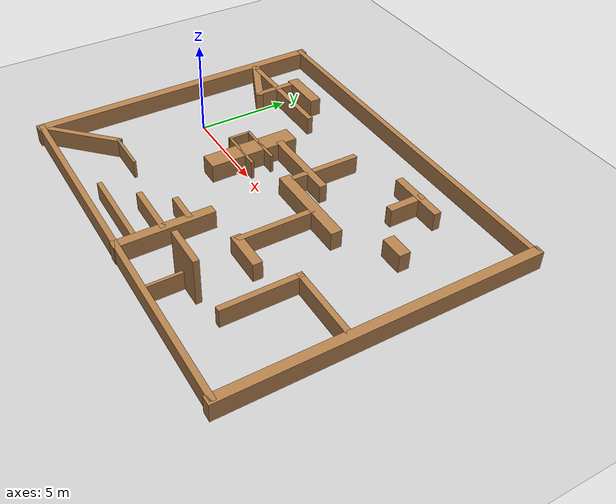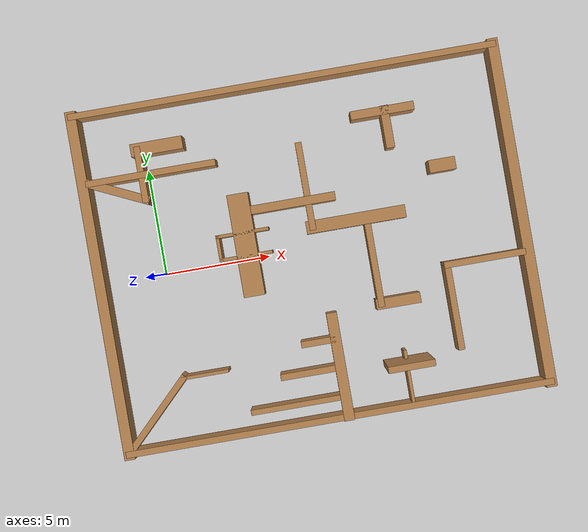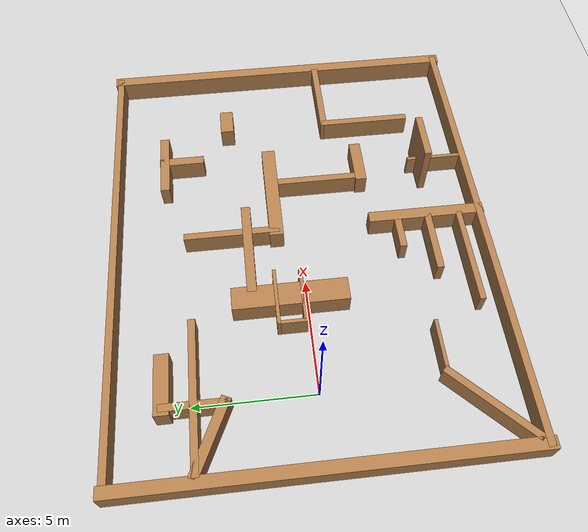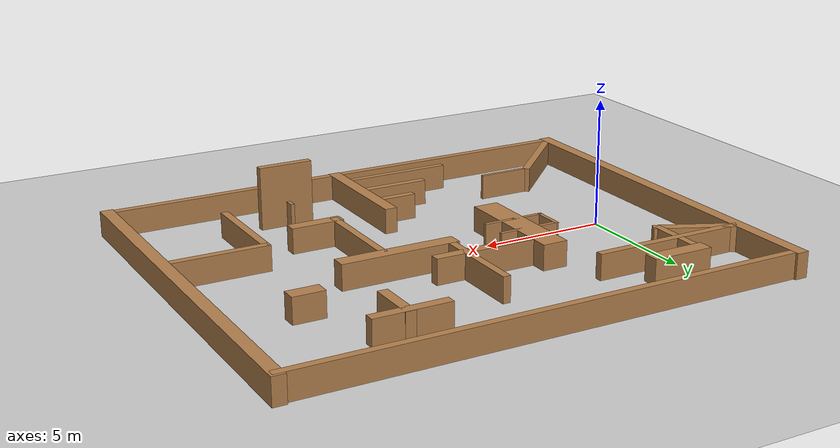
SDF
<sdf version="1.7">
 <world name="default">
  <light name="sun" type="directional">
   <pose>0 0 10 0 -0 0</pose>
   <diffuse>0.8 0.8 0.8 1</diffuse>
   <specular>0.2 0.2 0.2 1</specular>
   <attenuation>
    <range>1000</range>
    <constant>0.9</constant>
    <linear>0.01</linear>
    <quadratic>0.001</quadratic>
   </attenuation>
   <direction>-0.5 0.1 -0.9</direction>
   <spot><inner_angle>0</inner_angle><outer_angle>0</outer_angle><falloff>0</falloff></spot>
  </light>
  <model name="ground_plane">
   <static>1</static>
   <link name="link">
    <collision name="collision">
     <geometry><plane><normal>0 0 1</normal><size>100 100</size></plane></geometry>
     <surface><friction><ode><mu>100</mu><mu2>50</mu2></ode></friction></surface>
    </collision>
    <visual name="visual">
     <cast_shadows>0</cast_shadows>
     <geometry><plane><normal>0 0 1</normal><size>100 100</size></plane></geometry>
     <material>
      <script><uri>file://media/materials/scripts/gazebo.material</uri><name>Gazebo/Grey</name></script>
     </material>
    </visual>
   </link>
  </model>
  <gravity>0 0 -9.8</gravity>
  <magnetic_field>6e-06 2.3e-05 -4.2e-05</magnetic_field>
  <atmosphere type="adiabatic"/>
  <physics type="ode">
   <max_step_size>0.001</max_step_size>
   <real_time_factor>1</real_time_factor>
   <real_time_update_rate>1000</real_time_update_rate>
  </physics>
  <scene><ambient>0.4 0.4 0.4 1</ambient><background>0.7 0.7 0.7 1</background><shadows>1</shadows></scene>
  <spherical_coordinates>
   <surface_model>EARTH_WGS84</surface_model>
   <latitude_deg>0</latitude_deg>
   <longitude_deg>0</longitude_deg>
   <elevation>0</elevation>
   <heading_deg>0</heading_deg>
  </spherical_coordinates>
  <model name="test2">
   <pose>7 0 0 0 -0 0</pose>
   <link name="Wall_0">
    <collision name="Wall_0_Collision">
     <geometry><box><size>20.3 0.3 1</size></box></geometry>
     <pose>0 0 0.5 0 -0 0</pose>
    </collision>
    <visual name="Wall_0_Visual">
     <pose>0 0 0.5 0 -0 0</pose>
     <geometry><box><size>20.3 0.3 1</size></box></geometry>
     <material>
      <script><uri>file://media/materials/scripts/gazebo.material</uri><name>Gazebo/Wood</name></script>
      <ambient>1 1 1 1</ambient>
     </material>
     <meta><layer>0</layer></meta>
    </visual>
    <pose>-0 8 0 0 -0 0</pose>
   </link>
   <link name="Wall_10">
    <collision name="Wall_10_Collision">
     <geometry><box><size>6.14991 0.3 1</size></box></geometry>
     <pose>0 0 0.5 0 -0 0</pose>
    </collision>
    <visual name="Wall_10_Visual">
     <pose>0 0 0.5 0 -0 0</pose>
     <geometry><box><size>6.14991 0.3 1</size></box></geometry>
     <material>
      <script><uri>file://media/materials/scripts/gazebo.material</uri><name>Gazebo/Wood</name></script>
      <ambient>1 1 1 1</ambient>
     </material>
     <meta><layer>0</layer></meta>
    </visual>
    <pose>-6.769 4.775 0 0 -0 0</pose>
   </link>
   <link name="Wall_13">
    <collision name="Wall_13_Collision">
     <geometry><box><size>5.1001 0.5 1</size></box></geometry>
     <pose>0 0 0.5 0 -0 0</pose>
    </collision>
    <visual name="Wall_13_Visual">
     <pose>0 0 0.5 0 -0 0</pose>
     <geometry><box><size>5.1001 0.5 1</size></box></geometry>
     <material>
      <script><uri>file://media/materials/scripts/gazebo.material</uri><name>Gazebo/Wood</name></script>
      <ambient>1 1 1 1</ambient>
     </material>
     <meta><layer>0</layer></meta>
    </visual>
    <pose>0.426 -5.638 0 0 -0 1.5708</pose>
   </link>
   <link name="Wall_15">
    <collision name="Wall_15_Collision">
     <geometry><box><size>2.90014 0.3 1</size></box></geometry>
     <pose>0 0 0.5 0 -0 0</pose>
    </collision>
    <visual name="Wall_15_Visual">
     <pose>0 0 0.5 0 -0 0</pose>
     <geometry><box><size>2.90014 0.3 1</size></box></geometry>
     <material>
      <script><uri>file://media/materials/scripts/gazebo.material</uri><name>Gazebo/Wood</name></script>
      <ambient>1 1 1 1</ambient>
     </material>
     <meta><layer>0</layer></meta>
    </visual>
    <pose>-0.957 -5.671 0 0 -0 0</pose>
   </link>
   <link name="Wall_17">
    <collision name="Wall_17_Collision">
     <geometry><box><size>1.64993 0.3 1</size></box></geometry>
     <pose>0 0 0.5 0 -0 0</pose>
    </collision>
    <visual name="Wall_17_Visual">
     <pose>0 0 0.5 0 -0 0</pose>
     <geometry><box><size>1.64993 0.3 1</size></box></geometry>
     <material>
      <script><uri>file://media/materials/scripts/gazebo.material</uri><name>Gazebo/Wood</name></script>
      <ambient>1 1 1 1</ambient>
     </material>
     <meta><layer>0</layer></meta>
    </visual>
    <pose>-0.379001 -4.33 0 0 -0 0</pose>
   </link>
   <link name="Wall_19">
    <collision name="Wall_19_Collision">
     <geometry><box><size>4.59988 0.25 1</size></box></geometry>
     <pose>0 0 0.5 0 -0 0</pose>
    </collision>
    <visual name="Wall_19_Visual">
     <pose>0 0 0.5 0 -0 0</pose>
     <geometry><box><size>4.59988 0.25 1</size></box></geometry>
     <material>
      <script><uri>file://media/materials/scripts/gazebo.material</uri><name>Gazebo/Wood</name></script>
      <ambient>1 1 1 1</ambient>
     </material>
     <meta><layer>0</layer></meta>
    </visual>
    <pose>-1.752 -7.055 0 0 -0 0</pose>
   </link>
   <link name="Wall_2">
    <collision name="Wall_2_Collision">
     <geometry><box><size>20.3 0.3 1</size></box></geometry>
     <pose>0 0 0.5 0 -0 0</pose>
    </collision>
    <visual name="Wall_2_Visual">
     <pose>0 0 0.5 0 -0 0</pose>
     <geometry><box><size>20.3 0.3 1</size></box></geometry>
     <material>
      <script><uri>file://media/materials/scripts/gazebo.material</uri><name>Gazebo/Wood</name></script>
      <ambient>1 1 1 1</ambient>
     </material>
     <meta><layer>0</layer></meta>
    </visual>
    <pose>-0 -8 0 0 -0 0</pose>
   </link>
   <link name="Wall_22">
    <collision name="Wall_22_Collision">
     <geometry><box><size>2.5 0.15 1</size></box></geometry>
     <pose>0 0 0.5 0 -0 0</pose>
    </collision>
    <visual name="Wall_22_Visual">
     <pose>0 0 0.5 0 -0 0</pose>
     <geometry><box><size>2.5 0.15 1</size></box></geometry>
     <material>
      <script><uri>file://media/materials/scripts/gazebo.material</uri><name>Gazebo/Wood</name></script>
      <ambient>1 1 1 1</ambient>
     </material>
     <meta><layer>0</layer></meta>
    </visual>
    <pose>-3.032 1.305 0 0 -0 0</pose>
   </link>
   <link name="Wall_24">
    <collision name="Wall_24_Collision">
     <geometry><box><size>1.25 0.15 1</size></box></geometry>
     <pose>0 0 0.5 0 -0 0</pose>
    </collision>
    <visual name="Wall_24_Visual">
     <pose>0 0 0.5 0 -0 0</pose>
     <geometry><box><size>1.25 0.15 1</size></box></geometry>
     <material>
      <script><uri>file://media/materials/scripts/gazebo.material</uri><name>Gazebo/Wood</name></script>
      <ambient>1 1 1 1</ambient>
     </material>
     <meta><layer>0</layer></meta>
    </visual>
    <pose>-4.207 0.755 0 0 -0 -1.5708</pose>
   </link>
   <link name="Wall_26">
    <collision name="Wall_26_Collision">
     <geometry><box><size>2.5 0.15 1</size></box></geometry>
     <pose>0 0 0.5 0 -0 0</pose>
    </collision>
    <visual name="Wall_26_Visual">
     <pose>0 0 0.5 0 -0 0</pose>
     <geometry><box><size>2.5 0.15 1</size></box></geometry>
     <material>
      <script><uri>file://media/materials/scripts/gazebo.material</uri><name>Gazebo/Wood</name></script>
      <ambient>1 1 1 1</ambient>
     </material>
     <meta><layer>0</layer></meta>
    </visual>
    <pose>-3.032 0.205 0 0 -0 0</pose>
   </link>
   <link name="Wall_28">
    <collision name="Wall_28_Collision">
     <geometry><box><size>4.85019 1 1</size></box></geometry>
     <pose>0 0 0.5 0 -0 0</pose>
    </collision>
    <visual name="Wall_28_Visual">
     <pose>0 0 0.5 0 -0 0</pose>
     <geometry><box><size>4.85019 1 1</size></box></geometry>
     <material>
      <script><uri>file://media/materials/scripts/gazebo.material</uri><name>Gazebo/Wood</name></script>
      <ambient>1 1 1 1</ambient>
     </material>
     <meta><layer>0</layer></meta>
    </visual>
    <pose>-2.959 0.719 0 0 -0 -1.5708</pose>
   </link>
   <link name="Wall_31">
    <collision name="Wall_31_Collision">
     <geometry><box><size>3 0.4 1</size></box></geometry>
     <pose>0 0 0.5 0 -0 0</pose>
    </collision>
    <visual name="Wall_31_Visual">
     <pose>0 0 0.5 0 -0 0</pose>
     <geometry><box><size>3 0.4 1</size></box></geometry>
     <material>
      <script><uri>file://media/materials/scripts/gazebo.material</uri><name>Gazebo/Wood</name></script>
      <ambient>1 1 1 1</ambient>
     </material>
     <meta><layer>0</layer></meta>
    </visual>
    <pose>4.38319 5.80907 0 0 -0 0</pose>
   </link>
   <link name="Wall_35">
    <collision name="Wall_35_Collision">
     <geometry><box><size>1.25 0.6 1</size></box></geometry>
     <pose>0 0 0.5 0 -0 0</pose>
    </collision>
    <visual name="Wall_35_Visual">
     <pose>0 0 0.5 0 -0 0</pose>
     <geometry><box><size>1.25 0.6 1</size></box></geometry>
     <material>
      <script><uri>file://media/materials/scripts/gazebo.material</uri><name>Gazebo/Wood</name></script>
      <ambient>1 1 1 1</ambient>
     </material>
     <meta><layer>0</layer></meta>
    </visual>
    <pose>6.716 2.842 0 0 -0 0</pose>
   </link>
   <link name="Wall_38">
    <collision name="Wall_38_Collision">
     <geometry><box><size>2.65 0.3 1</size></box></geometry>
     <pose>0 0 0.5 0 -0 0</pose>
    </collision>
    <visual name="Wall_38_Visual">
     <pose>0 0 0.5 0 -0 0</pose>
     <geometry><box><size>2.65 0.3 1</size></box></geometry>
     <material>
      <script><uri>file://media/materials/scripts/gazebo.material</uri><name>Gazebo/Wood</name></script>
      <ambient>1 1 1 1</ambient>
     </material>
     <meta><layer>0</layer></meta>
    </visual>
    <pose>-7.206 4.789 0 0 -0 -1.5708</pose>
   </link>
   <link name="Wall_4">
    <collision name="Wall_4_Collision">
     <geometry><box><size>16.5 0.5 1</size></box></geometry>
     <pose>0 0 0.5 0 -0 0</pose>
    </collision>
    <visual name="Wall_4_Visual">
     <pose>0 0 0.5 0 -0 0</pose>
     <geometry><box><size>16.5 0.5 1</size></box></geometry>
     <material>
      <script><uri>file://media/materials/scripts/gazebo.material</uri><name>Gazebo/Wood</name></script>
      <ambient>1 1 1 1</ambient>
     </material>
     <meta><layer>0</layer></meta>
    </visual>
    <pose>-10 0 0 0 -0 -1.5708</pose>
   </link>
   <link name="Wall_40">
    <collision name="Wall_40_Collision">
     <geometry><box><size>3.14555 0.4 1</size></box></geometry>
     <pose>0 0 0.5 0 -0 0</pose>
    </collision>
    <visual name="Wall_40_Visual">
     <pose>0 0 0.5 0 -0 0</pose>
     <geometry><box><size>3.14555 0.4 1</size></box></geometry>
     <material>
      <script><uri>file://media/materials/scripts/gazebo.material</uri><name>Gazebo/Wood</name></script>
      <ambient>1 1 1 1</ambient>
     </material>
     <meta><layer>0</layer></meta>
    </visual>
    <pose>-8.45 4.1945 0 0 -0 -0.436605</pose>
   </link>
   <link name="Wall_42">
    <collision name="Wall_42_Collision">
     <geometry><box><size>4.25046 0.4 1</size></box></geometry>
     <pose>0 0 0.5 0 -0 0</pose>
    </collision>
    <visual name="Wall_42_Visual">
     <pose>0 0 0.5 0 -0 0</pose>
     <geometry><box><size>4.25046 0.4 1</size></box></geometry>
     <material>
      <script><uri>file://media/materials/scripts/gazebo.material</uri><name>Gazebo/Wood</name></script>
      <ambient>1 1 1 1</ambient>
     </material>
     <meta><layer>0</layer></meta>
    </visual>
    <pose>-0.581 2.276 0 0 -0 0</pose>
   </link>
   <link name="Wall_44">
    <collision name="Wall_44_Collision">
     <geometry><box><size>4.14966 0.3 1</size></box></geometry>
     <pose>0 0 0.5 0 -0 0</pose>
    </collision>
    <visual name="Wall_44_Visual">
     <pose>0 0 0.5 0 -0 0</pose>
     <geometry><box><size>4.14966 0.3 1</size></box></geometry>
     <material>
      <script><uri>file://media/materials/scripts/gazebo.material</uri><name>Gazebo/Wood</name></script>
      <ambient>1 1 1 1</ambient>
     </material>
     <meta><layer>0</layer></meta>
    </visual>
    <pose>0.257999 2.939 0 0 -0 -1.5708</pose>
   </link>
   <link name="Wall_46">
    <collision name="Wall_46_Collision">
     <geometry><box><size>4.7 0.6 1</size></box></geometry>
     <pose>0 0 0.5 0 -0 0</pose>
    </collision>
    <visual name="Wall_46_Visual">
     <pose>0 0 0.5 0 -0 0</pose>
     <geometry><box><size>4.7 0.6 1</size></box></geometry>
     <material>
      <script><uri>file://media/materials/scripts/gazebo.material</uri><name>Gazebo/Wood</name></script>
      <ambient>1 1 1 1</ambient>
     </material>
     <meta><layer>0</layer></meta>
    </visual>
    <pose>2.308 1.014 0 0 -0 0</pose>
   </link>
   <link name="Wall_48">
    <collision name="Wall_48_Collision">
     <geometry><box><size>4.15034 0.3 1</size></box></geometry>
     <pose>0 0 0.5 0 -0 0</pose>
    </collision>
    <visual name="Wall_48_Visual">
     <pose>0 0 0.5 0 -0 0</pose>
     <geometry><box><size>4.15034 0.3 1</size></box></geometry>
     <material>
      <script><uri>file://media/materials/scripts/gazebo.material</uri><name>Gazebo/Wood</name></script>
      <ambient>1 1 1 1</ambient>
     </material>
     <meta><layer>0</layer></meta>
    </visual>
    <pose>2.811 -1.153 0 0 -0 -1.5708</pose>
   </link>
   <link name="Wall_50">
    <collision name="Wall_50_Collision">
     <geometry><box><size>3.86502 0.3 1</size></box></geometry>
     <pose>0 0 0.5 0 -0 0</pose>
    </collision>
    <visual name="Wall_50_Visual">
     <pose>0 0 0.5 0 -0 0</pose>
     <geometry><box><size>3.86502 0.3 1</size></box></geometry>
     <material>
      <script><uri>file://media/materials/scripts/gazebo.material</uri><name>Gazebo/Wood</name></script>
      <ambient>1 1 1 1</ambient>
     </material>
     <meta><layer>0</layer></meta>
    </visual>
    <pose>7.93249 -1.80896 0 0 -0 0.000539</pose>
   </link>
   <link name="Wall_52">
    <collision name="Wall_52_Collision">
     <geometry><box><size>4.65012 0.3 1</size></box></geometry>
     <pose>0 0 0.5 0 -0 0</pose>
    </collision>
    <visual name="Wall_52_Visual">
     <pose>0 0 0.5 0 -0 0</pose>
     <geometry><box><size>4.65012 0.3 1</size></box></geometry>
     <material>
      <script><uri>file://media/materials/scripts/gazebo.material</uri><name>Gazebo/Wood</name></script>
      <ambient>1 1 1 1</ambient>
     </material>
     <meta><layer>0</layer></meta>
    </visual>
    <pose>-8.462 -6.462 0 0 -0 0.785398</pose>
   </link>
   <link name="Wall_54">
    <collision name="Wall_54_Collision">
     <geometry><box><size>2.25 0.15 1</size></box></geometry>
     <pose>0 0 0.5 0 -0 0</pose>
    </collision>
    <visual name="Wall_54_Visual">
     <pose>0 0 0.5 0 -0 0</pose>
     <geometry><box><size>2.25 0.15 1</size></box></geometry>
     <material>
      <script><uri>file://media/materials/scripts/gazebo.material</uri><name>Gazebo/Wood</name></script>
      <ambient>1 1 1 1</ambient>
     </material>
     <meta><layer>0</layer></meta>
    </visual>
    <pose>-5.874 -4.924 0 0 -0 0</pose>
   </link>
   <link name="Wall_56">
    <collision name="Wall_56_Collision">
     <geometry><box><size>4.15 0.3 1</size></box></geometry>
     <pose>0 0 0.5 0 -0 0</pose>
    </collision>
    <visual name="Wall_56_Visual">
     <pose>0 0 0.5 0 -0 0</pose>
     <geometry><box><size>4.15 0.3 1</size></box></geometry>
     <material>
      <script><uri>file://media/materials/scripts/gazebo.material</uri><name>Gazebo/Wood</name></script>
      <ambient>1 1 1 1</ambient>
     </material>
     <meta><layer>0</layer></meta>
    </visual>
    <pose>6.14998 -3.75792 0 0 -0 -1.5708</pose>
   </link>
   <link name="Wall_58">
    <collision name="Wall_58_Collision">
     <geometry><box><size>2.1 0.5 1</size></box></geometry>
     <pose>0 0 0.5 0 -0 0</pose>
    </collision>
    <visual name="Wall_58_Visual">
     <pose>0 0 0.5 0 -0 0</pose>
     <geometry><box><size>2.1 0.5 1</size></box></geometry>
     <material>
      <script><uri>file://media/materials/scripts/gazebo.material</uri><name>Gazebo/Wood</name></script>
      <ambient>1 1 1 1</ambient>
     </material>
     <meta><layer>0</layer></meta>
    </visual>
    <pose>3.611 -3.078 0 0 -0 0</pose>
   </link>
   <link name="Wall_6">
    <collision name="Wall_6_Collision">
     <geometry><box><size>16.5 0.5 1</size></box></geometry>
     <pose>0 0 0.5 0 -0 0</pose>
    </collision>
    <visual name="Wall_6_Visual">
     <pose>0 0 0.5 0 -0 0</pose>
     <geometry><box><size>16.5 0.5 1</size></box></geometry>
     <material>
      <script><uri>file://media/materials/scripts/gazebo.material</uri><name>Gazebo/Wood</name></script>
      <ambient>1 1 1 1</ambient>
     </material>
     <meta><layer>0</layer></meta>
    </visual>
    <pose>10 0 0 0 -0 -1.5708</pose>
   </link>
   <link name="Wall_60">
    <collision name="Wall_60_Collision">
     <geometry><box><size>2.5 0.15 1</size></box></geometry>
     <pose>0 0 0.5 0 -0 0</pose>
    </collision>
    <visual name="Wall_60_Visual">
     <pose>0 0 0.5 0 -0 0</pose>
     <geometry><box><size>2.5 0.15 1</size></box></geometry>
     <material>
      <script><uri>file://media/materials/scripts/gazebo.material</uri><name>Gazebo/Wood</name></script>
      <ambient>1 1 1 1</ambient>
     </material>
     <meta><layer>0</layer></meta>
    </visual>
    <pose>3.513 -6.651 0 0 -0 -1.5708</pose>
   </link>
   <link name="Wall_62">
    <collision name="Wall_62_Collision">
     <geometry><box><size>2.15018 0.3 2.5</size></box></geometry>
     <pose>0 0 1.25 0 -0 0</pose>
    </collision>
    <visual name="Wall_62_Visual">
     <pose>0 0 1.25 0 -0 0</pose>
     <geometry><box><size>2.15018 0.3 2.5</size></box></geometry>
     <material>
      <script><uri>file://media/materials/scripts/gazebo.material</uri><name>Gazebo/Wood</name></script>
      <ambient>1 1 1 1</ambient>
     </material>
     <meta><layer>0</layer></meta>
    </visual>
    <pose>3.571 -5.956 0 0 -0 0</pose>
   </link>
   <link name="Wall_64">
    <collision name="Wall_64_Collision">
     <geometry><box><size>1.9996 0.4 1</size></box></geometry>
     <pose>0 0 0.5 0 -0 0</pose>
    </collision>
    <visual name="Wall_64_Visual">
     <pose>0 0 0.5 0 -0 0</pose>
     <geometry><box><size>1.9996 0.4 1</size></box></geometry>
     <material>
      <script><uri>file://media/materials/scripts/gazebo.material</uri><name>Gazebo/Wood</name></script>
      <ambient>1 1 1 1</ambient>
     </material>
     <meta><layer>0</layer></meta>
    </visual>
    <pose>4.49 5.03 0 0 -0 -1.5708</pose>
   </link>
   <link name="Wall_66">
    <collision name="Wall_66_Collision">
     <geometry><box><size>2.45 0.6 1</size></box></geometry>
     <pose>0 0 0.5 0 -0 0</pose>
    </collision>
    <visual name="Wall_66_Visual">
     <pose>0 0 0.5 0 -0 0</pose>
     <geometry><box><size>2.45 0.6 1</size></box></geometry>
     <material>
      <script><uri>file://media/materials/scripts/gazebo.material</uri><name>Gazebo/Wood</name></script>
      <ambient>1 1 1 1</ambient>
     </material>
     <meta><layer>0</layer></meta>
    </visual>
    <pose>-6.281 5.964 0 0 -0 0</pose>
   </link>
   <static>1</static>
  </model>
  <plugin filename="libcollision_map_creator.so" name="collision_map_creator"/>
 </world>
</sdf>
